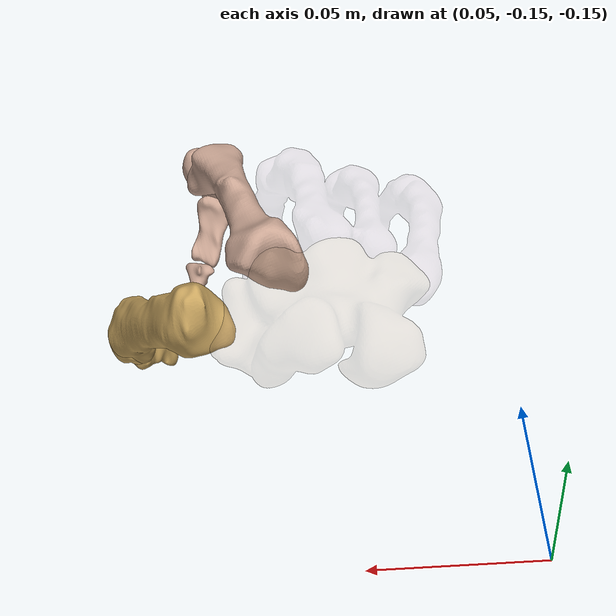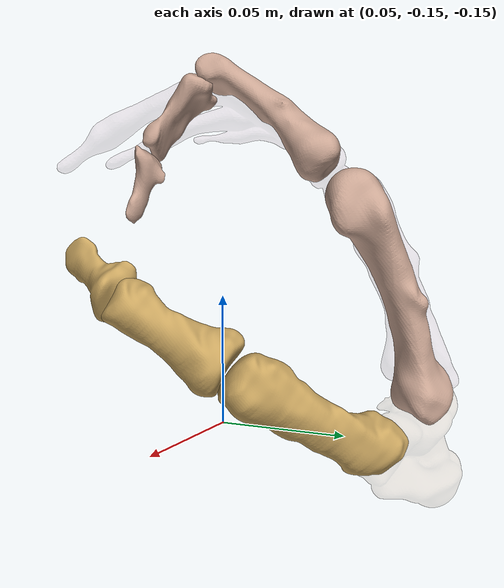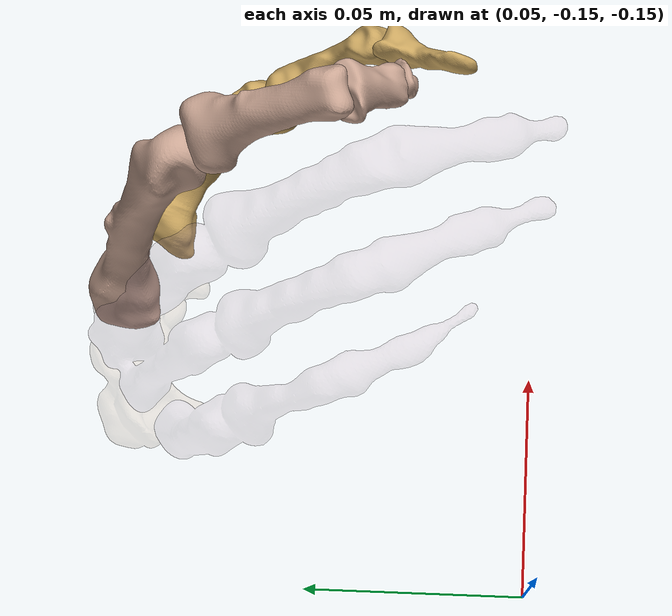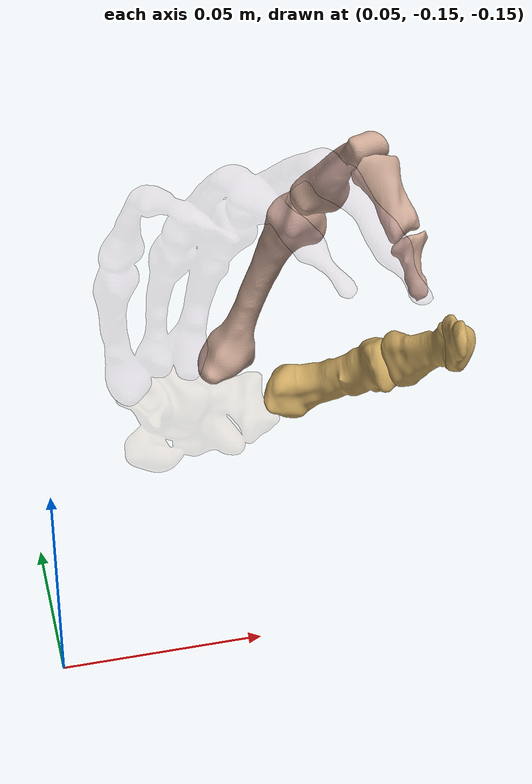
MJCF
<mujoco model="hand_model scene">
  <statistic center="-0.4 -0.4 0.2" extent="1.2"/>
  <visual>
    <headlight diffuse="0.6 0.6 0.6"  ambient="0.3 0.3 0.3" specular="0 0 0"/>
    <rgba haze="0.15 0.25 0.35 1"/>
    <global azimuth="170" elevation="-10" offheight="1024" offwidth="1024" />
    <map znear="0.01"/>
  </visual>
  <asset>
    <texture type="skybox" builtin="gradient" rgb1="0.3 0.5 0.7" rgb2="0 0 0" width="512"
          height="3072"/>
    <texture type="2d" name="groundplane" builtin="checker" mark="edge" rgb1="0.2 0.3 0.4"
          rgb2="0.1 0.2 0.3" markrgb="0.8 0.8 0.8" width="300" height="300"/>
    <material name="groundplane" texture="groundplane" texuniform="true" texrepeat="10 10"
          reflectance="0.3"/>
    <material name="bone" reflectance="1" shininess="0" specular="0" rgba="0.68 0.64 0.57 1"/>
  </asset>
  <default>
    <default class="zf">
      <geom type="mesh" contype="3" conaffinity="2" group="0" friction="0.7" solref="0.015 1" solimp="0.95 0.99 0.003" rgba="0.78 0.64 0.57 0.9"/>
    </default>
    <default class="dau">
      <geom type="mesh" contype="3" conaffinity="2" group="0" friction="0.7" solref="0.015 1" solimp="0.95 0.99 0.003" rgba="0.78 0.64 0.37 0.9"/>
    </default>
    <default class="base">
      <geom type="mesh" contype="3" conaffinity="2" group="0" friction="0.7" solref="0.015 1" solimp="0.95 0.99 0.003" rgba="0.74 0.60 0.47 0.1"/>
    </default>
    <default class="other">
      <geom type="mesh" contype="3" conaffinity="2" group="0" friction="0.7" solref="0.015 1" solimp="0.95 0.99 0.003" rgba="0.74 0.60 0.67 0.1"/>
    </default>
    <default class="visual">
      <geom type="mesh" contype="0" conaffinity="0" group="2" material="bone" rgba="0.68 0.64 0.57 1.0"/>
    </default>
    <default class="tracker">
      <geom type="mesh" contype="0" conaffinity="0" group="2" rgba="0.2 0.2 1 0.2"/>
    </default>
  </default>
  <worldbody>
    <light pos="0 0 1.5" dir="0 0 -1" directional="true"/>
    <geom name="floor" size="0 0 0.05" type="plane" material="groundplane" pos="0 0 0"/>
  </worldbody>
  <include file="model.xml"/>
</mujoco>

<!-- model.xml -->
<mujoco model="hand model">
    <compiler angle="radian" autolimits="true" meshdir="../../assets/meshes" texturedir="assets" />
    <option integrator="implicit" />

    <asset>
        <mesh file="Segmentation_ZF_DIP.stl" name="ZF-DIP" scale="0.001 0.001 0.001" />
        <mesh file="Segmentation_ZF_PIP.stl" name="ZF-PIP1" scale="0.001 0.001 0.001" />
        <mesh file="zf_mid2.stl" name="ZF-PIP2" scale="0.001 0.001 0.001" />
        <mesh file="zf_mcp.stl" name="ZF-MCP" scale="0.001 0.001 0.001" />
        <mesh file="Segmentation_DAU_Osmetacarpale_1.stl" name="DAU-MCP" scale="0.001 0.001 0.001" />
        <mesh file="Segmentation_DAU_Phalax_proximalis.stl" name="DAU-PIP" scale="0.001 0.001 0.001" />
        <mesh file="Segmentation_DAU_DIP.stl" name="DAU-DIP" scale="0.001 0.001 0.001" />
        <mesh file="backhand.stl" name="BASE" scale="0.001 0.001 0.001" />
        <mesh file="rest.stl" name="OTHER" scale="0.001 0.001 0.001" />
    </asset>

    <worldbody>

        <body name="ZF_MCP" pos="0.17653043607413418 -0.006212724687087837 0.162465233212028"
            quat="0.949339165514938 0.2596204789151586 0.14900580594456572 -0.09565367500559203">

            <geom class="zf" mesh="ZF-MCP" type="mesh" />
            <geom class="base" mesh="BASE" type="mesh" />
            <geom class="other" mesh="OTHER" type="mesh" />

            <body name="DAU_MCP"
                pos="-0.005606556840859099 -0.021182920578425978 0.015945483219393965"
                quat="0.9949574306657203 0.029911158443049864 0.05205375976488879 0.08034575195990447">
                <geom class="dau" mesh="DAU-MCP" type="mesh" />

                <joint armature="0.001"
                    axis="0.38290322433637825 0.8061400513120719 -0.45113560983741524"
                    limited="true" name="ZF_MCP_to_DAU_CMC"
                    pos="0.05842262112129723 -0.197704900412345 -0.21937921318475384" range="-1 1"
                    type="hinge" />
                <joint armature="0.001"
                    axis="0.5065053167895093 -0.7251691156758073 -0.46645698379799877"
                    limited="true" name="DAU_CMC_to_DAU_MCP"
                    pos="0.05265387588024447 -0.19927027804737923 -0.2239655949718938"
                    range="-0.2 1" type="hinge" />

                <body name="DAU_PIP"
                    pos="-0.008196766583300586 -0.00024189521740785835 -0.003934239228705053"
                    quat="0.9970650719526523 0.017730333158715538 -0.06483317581611503 -0.03665428885860335">
                    <geom class="dau" mesh="DAU-PIP" type="mesh" />

                    <joint armature="0.001"
                        axis="0.4015340030903094 -0.8767205436340854 -0.26482358794530536"
                        limited="true" name="DAU_MCP_to_DAU_PIP"
                        pos="0.07296256405714671 -0.20325087574067593 -0.1858297539452097"
                        range="-0.2 1" type="hinge" />

                    <body name="DAU_DIP"
                        pos="-0.017981822230629576 -0.0022555470152079947 -0.007942273930505877"
                        quat="0.9445713027799073 0.09804063397148947 -0.27536336029306524 -0.1494928354913666">
                        <geom class="dau" mesh="DAU-DIP" type="mesh" />

                        <joint armature="0.001"
                            axis="0.3311121118735718 -0.8579696307349206 -0.39275040688356855"
                            limited="true" name="DAU_PIP_to_DAU_DIP"
                            pos="0.08006127446019014 -0.21222641870517578 -0.15242569103907483"
                            range="-0.2 1" type="hinge" />
                        <body name="DAU_TIP" />
                    </body>
                </body>
            </body>

            <body name="ZF_PIP2" pos="-0.05779826199451505 0.02360952439360611 -0.06208404424439442"
                quat="0.980917450013604 -0.10280033238966753 -0.16162637540261304 0.03331610261715312">
                <geom class="zf" mesh="ZF-PIP2" type="mesh" />

                <joint armature="0.001"
                    axis="0.8382911488119638 0.5414090228690458 0.06437561478933485" limited="true"
                    name="ZF_MCP_to_ZF_PIP2"
                    pos="0.04238206989124567 -0.17442280042562222 -0.1674984800507602"
                    range="-0.4 1" type="hinge" />

                <body name="ZF_PIP1"
                    pos="0.08346242137577634 -0.1875401717582122 0.1085195594049764"
                    quat="0.8656860483915861 0.43804901120463946 0.23297603930344887 0.06650484578792436">
                    <geom class="zf" mesh="ZF-PIP1" type="mesh" />

                    <joint armature="0.001"
                        axis="0.8177009754458291 0.5740279646833747 0.0430930448727008"
                        limited="true" name="ZF_PIP2_to_ZF_PIP1"
                        pos="0.05452766448629971 -0.19396968844748846 -0.1292711493933957"
                        range="-0.4 1" type="hinge" />

                    <body name="ZF_DIP"
                        pos="0.023568600661410585 -0.08787676691923163 0.09587945215669856"
                        quat="0.9632708229693467 0.23847074819332648 0.11432025253842773 0.04660368796159918">
                        <geom class="zf" mesh="ZF-DIP" type="mesh" />

                        <joint armature="0.001"
                            axis="0.900632023718754 0.3693421052609657 0.2290160848797702"
                            limited="true" name="ZF_PIP1_to_ZF_DIP"
                            pos="0.061963533317751354 -0.21357306872389126 -0.12027158331001715"
                            range="-0.4 1" type="hinge" />
                        <body name="ZF_TIP" />
                    </body>
                </body>
            </body>
        </body>

        <camera name="camera0" pos="0.375 0.069 0.146"
            xyaxes="-0.581 0.814 0.000 -0.114 -0.081 0.990" />
        <camera name="camera1" pos="0.461 0.120 0.252"
            xyaxes="-0.593 0.805 -0.000 -0.358 -0.264 0.896" />
        <camera name="camera2" pos="0.617 -0.002 0.149"
            xyaxes="-0.249 0.968 0.000 0.018 0.005 1.000" />

    </worldbody>
</mujoco>
